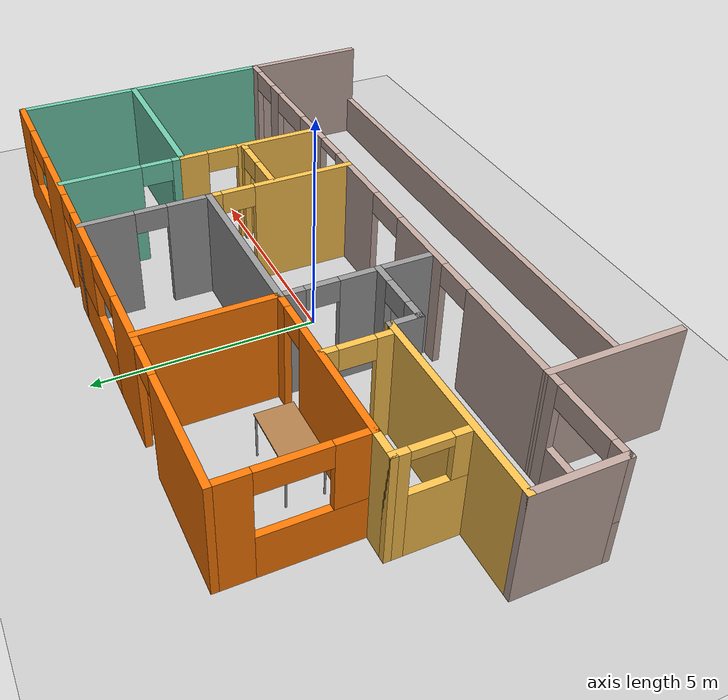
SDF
<sdf version="1.7">
 <world name="__default__">
  <model name="Building">
   <link name="Wall_0">
    <pose>1.05011 4.39635 0 0 -0 0</pose>
    <visual name="Wall_0_Visual_0">
     <pose>-5.36603 0 1.25 0 -0 0</pose>
     <geometry><box><size>2.76795 0.15 2.5</size></box></geometry>
     <material>
      <script><uri>file://media/materials/scripts/gazebo.material</uri><name>Gazebo/Grey</name></script>
      <ambient>0.996078 0.47451 0.0196078 1</ambient>
     </material>
     <meta><layer>0</layer></meta>
    </visual>
    <collision name="Wall_0_Collision_0">
     <geometry><box><size>2.76795 0.15 2.5</size></box></geometry>
     <pose>-5.36603 0 1.25 0 -0 0</pose>
    </collision>
    <visual name="Wall_0_Visual_1">
     <pose>-2.37459 0 1.25 0 -0 0</pose>
     <geometry><box><size>1.56929 0.15 2.5</size></box></geometry>
     <material>
      <script><uri>file://media/materials/scripts/gazebo.material</uri><name>Gazebo/Grey</name></script>
      <ambient>0.996078 0.47451 0.0196078 1</ambient>
     </material>
     <meta><layer>0</layer></meta>
    </visual>
    <collision name="Wall_0_Collision_1">
     <geometry><box><size>1.56929 0.15 2.5</size></box></geometry>
     <pose>-2.37459 0 1.25 0 -0 0</pose>
    </collision>
    <visual name="Wall_0_Visual_2">
     <pose>3.2233 0 1.25 0 -0 0</pose>
     <geometry><box><size>1.75312 0.15 2.5</size></box></geometry>
     <material>
      <script><uri>file://media/materials/scripts/gazebo.material</uri><name>Gazebo/Grey</name></script>
      <ambient>0.996078 0.47451 0.0196078 1</ambient>
     </material>
     <meta><layer>0</layer></meta>
    </visual>
    <collision name="Wall_0_Collision_2">
     <geometry><box><size>1.75312 0.15 2.5</size></box></geometry>
     <pose>3.2233 0 1.25 0 -0 0</pose>
    </collision>
    <visual name="Wall_0_Visual_3">
     <pose>-0.015857 0 0.5 0 -0 0</pose>
     <geometry><box><size>3.14818 0.15 1</size></box></geometry>
     <material>
      <script><uri>file://media/materials/scripts/gazebo.material</uri><name>Gazebo/Grey</name></script>
      <ambient>0.996078 0.47451 0.0196078 1</ambient>
     </material>
     <meta><layer>0</layer></meta>
    </visual>
    <collision name="Wall_0_Collision_3">
     <geometry><box><size>3.14818 0.15 1</size></box></geometry>
     <pose>-0.015857 0 0.5 0 -0 0</pose>
    </collision>
    <visual name="Wall_0_Visual_4">
     <pose>5.42493 0 0.5 0 -0 0</pose>
     <geometry><box><size>2.65014 0.15 1</size></box></geometry>
     <material>
      <script><uri>file://media/materials/scripts/gazebo.material</uri><name>Gazebo/Grey</name></script>
      <ambient>0.996078 0.47451 0.0196078 1</ambient>
     </material>
     <meta><layer>0</layer></meta>
    </visual>
    <collision name="Wall_0_Collision_4">
     <geometry><box><size>2.65014 0.15 1</size></box></geometry>
     <pose>5.42493 0 0.5 0 -0 0</pose>
    </collision>
    <visual name="Wall_0_Visual_5">
     <pose>0.684143 0 1.75 0 -0 0</pose>
     <geometry><box><size>1.74818 0.15 1.5</size></box></geometry>
     <material>
      <script><uri>file://media/materials/scripts/gazebo.material</uri><name>Gazebo/Grey</name></script>
      <ambient>0.996078 0.47451 0.0196078 1</ambient>
     </material>
     <meta><layer>0</layer></meta>
    </visual>
    <collision name="Wall_0_Collision_5">
     <geometry><box><size>1.74818 0.15 1.5</size></box></geometry>
     <pose>0.684143 0 1.75 0 -0 0</pose>
    </collision>
    <visual name="Wall_0_Visual_6">
     <pose>0.684143 0 1.75 0 -0 0</pose>
     <geometry><box><size>1.74818 0.15 1.5</size></box></geometry>
     <material>
      <script><uri>file://media/materials/scripts/gazebo.material</uri><name>Gazebo/Grey</name></script>
      <ambient>0.996078 0.47451 0.0196078 1</ambient>
     </material>
     <meta><layer>0</layer></meta>
    </visual>
    <collision name="Wall_0_Collision_6">
     <geometry><box><size>1.74818 0.15 1.5</size></box></geometry>
     <pose>0.684143 0 1.75 0 -0 0</pose>
    </collision>
    <visual name="Wall_0_Visual_7">
     <pose>6.12493 0 1.75 0 -0 0</pose>
     <geometry><box><size>1.25014 0.15 1.5</size></box></geometry>
     <material>
      <script><uri>file://media/materials/scripts/gazebo.material</uri><name>Gazebo/Grey</name></script>
      <ambient>0.996078 0.47451 0.0196078 1</ambient>
     </material>
     <meta><layer>0</layer></meta>
    </visual>
    <collision name="Wall_0_Collision_7">
     <geometry><box><size>1.25014 0.15 1.5</size></box></geometry>
     <pose>6.12493 0 1.75 0 -0 0</pose>
    </collision>
    <visual name="Wall_0_Visual_8">
     <pose>-3.57065 0 2.25 0 -0 0</pose>
     <geometry><box><size>0.822813 0.15 0.5</size></box></geometry>
     <material>
      <script><uri>file://media/materials/scripts/gazebo.material</uri><name>Gazebo/Grey</name></script>
      <ambient>0.996078 0.47451 0.0196078 1</ambient>
     </material>
     <meta><layer>0</layer></meta>
    </visual>
    <collision name="Wall_0_Collision_8">
     <geometry><box><size>0.822813 0.15 0.5</size></box></geometry>
     <pose>-3.57065 0 2.25 0 -0 0</pose>
    </collision>
    <visual name="Wall_0_Visual_9">
     <pose>-0.889948 0 2.25 0 -0 0</pose>
     <geometry><box><size>1.4 0.15 0.5</size></box></geometry>
     <material>
      <script><uri>file://media/materials/scripts/gazebo.material</uri><name>Gazebo/Grey</name></script>
      <ambient>0.996078 0.47451 0.0196078 1</ambient>
     </material>
     <meta><layer>0</layer></meta>
    </visual>
    <collision name="Wall_0_Collision_9">
     <geometry><box><size>1.4 0.15 0.5</size></box></geometry>
     <pose>-0.889948 0 2.25 0 -0 0</pose>
    </collision>
    <visual name="Wall_0_Visual_10">
     <pose>4.79986 0 2.25 0 -0 0</pose>
     <geometry><box><size>1.4 0.15 0.5</size></box></geometry>
     <material>
      <script><uri>file://media/materials/scripts/gazebo.material</uri><name>Gazebo/Grey</name></script>
      <ambient>0.996078 0.47451 0.0196078 1</ambient>
     </material>
     <meta><layer>0</layer></meta>
    </visual>
    <collision name="Wall_0_Collision_10">
     <geometry><box><size>1.4 0.15 0.5</size></box></geometry>
     <pose>4.79986 0 2.25 0 -0 0</pose>
    </collision>
    <visual name="Wall_0_Visual_11">
     <pose>1.95249 0 2.25 0 -0 0</pose>
     <geometry><box><size>0.788508 0.15 0.5</size></box></geometry>
     <material>
      <script><uri>file://media/materials/scripts/gazebo.material</uri><name>Gazebo/Grey</name></script>
      <ambient>0.996078 0.47451 0.0196078 1</ambient>
     </material>
     <meta><layer>0</layer></meta>
    </visual>
    <collision name="Wall_0_Collision_11">
     <geometry><box><size>0.788508 0.15 0.5</size></box></geometry>
     <pose>1.95249 0 2.25 0 -0 0</pose>
    </collision>
    <visual name="Wall_0_Visual_12">
     <pose>1.95249 0 2.25 0 -0 0</pose>
     <geometry><box><size>0.788508 0.15 0.5</size></box></geometry>
     <material>
      <script><uri>file://media/materials/scripts/gazebo.material</uri><name>Gazebo/Grey</name></script>
      <ambient>0.996078 0.47451 0.0196078 1</ambient>
     </material>
     <meta><layer>0</layer></meta>
    </visual>
    <collision name="Wall_0_Collision_12">
     <geometry><box><size>0.788508 0.15 0.5</size></box></geometry>
     <pose>1.95249 0 2.25 0 -0 0</pose>
    </collision>
   </link>
   <link name="Wall_10">
    <collision name="Wall_10_Collision">
     <geometry><box><size>4 0.15 2.5</size></box></geometry>
     <pose>0 0 1.25 0 -0 0</pose>
    </collision>
    <visual name="Wall_10_Visual">
     <pose>0 0 1.25 0 -0 0</pose>
     <geometry><box><size>4 0.15 2.5</size></box></geometry>
     <material>
      <script><uri>file://media/materials/scripts/gazebo.material</uri><name>Gazebo/Grey</name></script>
      <ambient>1 1 1 1</ambient>
     </material>
     <meta><layer>0</layer></meta>
    </visual>
    <pose>0.150112 1.54635 0 0 -0 0</pose>
   </link>
   <link name="Wall_107">
    <pose>2.07511 -0.128649 0 0 -0 -1.5708</pose>
    <visual name="Wall_107_Visual_0">
     <pose>-1.57211 0 1.25 0 -0 0</pose>
     <geometry><box><size>0.355782 0.15 2.5</size></box></geometry>
     <material>
      <script><uri>file://media/materials/scripts/gazebo.material</uri><name>Gazebo/Grey</name></script>
      <ambient>1 0.764706 0.305882 1</ambient>
     </material>
     <meta><layer>0</layer></meta>
    </visual>
    <collision name="Wall_107_Collision_0">
     <geometry><box><size>0.355782 0.15 2.5</size></box></geometry>
     <pose>-1.57211 0 1.25 0 -0 0</pose>
    </collision>
    <visual name="Wall_107_Visual_1">
     <pose>0.556557 0 1.25 0 -0 0</pose>
     <geometry><box><size>2.38689 0.15 2.5</size></box></geometry>
     <material>
      <script><uri>file://media/materials/scripts/gazebo.material</uri><name>Gazebo/Grey</name></script>
      <ambient>1 0.764706 0.305882 1</ambient>
     </material>
     <meta><layer>0</layer></meta>
    </visual>
    <collision name="Wall_107_Collision_1">
     <geometry><box><size>2.38689 0.15 2.5</size></box></geometry>
     <pose>0.556557 0 1.25 0 -0 0</pose>
    </collision>
    <visual name="Wall_107_Visual_2">
     <pose>-1.01555 0 2.25 0 -0 0</pose>
     <geometry><box><size>0.757332 0.15 0.5</size></box></geometry>
     <material>
      <script><uri>file://media/materials/scripts/gazebo.material</uri><name>Gazebo/Grey</name></script>
      <ambient>1 0.764706 0.305882 1</ambient>
     </material>
     <meta><layer>0</layer></meta>
    </visual>
    <collision name="Wall_107_Collision_2">
     <geometry><box><size>0.757332 0.15 0.5</size></box></geometry>
     <pose>-1.01555 0 2.25 0 -0 0</pose>
    </collision>
   </link>
   <link name="Wall_11">
    <pose>2.07511 2.97135 0 0 -0 1.5708</pose>
    <visual name="Wall_11_Visual_0">
     <pose>-0.979075 0 1.25 0 -0 0</pose>
     <geometry><box><size>1.04185 0.15 2.5</size></box></geometry>
     <material>
      <script><uri>file://media/materials/scripts/gazebo.material</uri><name>Gazebo/Grey</name></script>
      <ambient>1 1 1 1</ambient>
     </material>
     <meta><layer>0</layer></meta>
    </visual>
    <collision name="Wall_11_Collision_0">
     <geometry><box><size>1.04185 0.15 2.5</size></box></geometry>
     <pose>-0.979075 0 1.25 0 -0 0</pose>
    </collision>
    <visual name="Wall_11_Visual_1">
     <pose>0.87636 0 1.25 0 -0 0</pose>
     <geometry><box><size>1.24728 0.15 2.5</size></box></geometry>
     <material>
      <script><uri>file://media/materials/scripts/gazebo.material</uri><name>Gazebo/Grey</name></script>
      <ambient>1 1 1 1</ambient>
     </material>
     <meta><layer>0</layer></meta>
    </visual>
    <collision name="Wall_11_Collision_1">
     <geometry><box><size>1.24728 0.15 2.5</size></box></geometry>
     <pose>0.87636 0 1.25 0 -0 0</pose>
    </collision>
    <visual name="Wall_11_Visual_2">
     <pose>-0.102714 0 2.25 0 -0 0</pose>
     <geometry><box><size>0.71087 0.15 0.5</size></box></geometry>
     <material>
      <script><uri>file://media/materials/scripts/gazebo.material</uri><name>Gazebo/Grey</name></script>
      <ambient>1 1 1 1</ambient>
     </material>
     <meta><layer>0</layer></meta>
    </visual>
    <collision name="Wall_11_Collision_2">
     <geometry><box><size>0.71087 0.15 0.5</size></box></geometry>
     <pose>-0.102714 0 2.25 0 -0 0</pose>
    </collision>
   </link>
   <link name="Wall_115">
    <pose>2.98021 0.049674 0 0 -0 3.14159</pose>
    <visual name="Wall_115_Visual_0">
     <pose>-0.770795 0 1.25 0 -0 0</pose>
     <geometry><box><size>0.20841 0.15 2.5</size></box></geometry>
     <material>
      <script><uri>file://media/materials/scripts/gazebo.material</uri><name>Gazebo/Grey</name></script>
      <ambient>1 0.764706 0.305882 1</ambient>
     </material>
     <meta><layer>0</layer></meta>
    </visual>
    <collision name="Wall_115_Collision_0">
     <geometry><box><size>0.20841 0.15 2.5</size></box></geometry>
     <pose>-0.770795 0 1.25 0 -0 0</pose>
    </collision>
    <visual name="Wall_115_Visual_1">
     <pose>0.438613 0 1.25 0 -0 0</pose>
     <geometry><box><size>0.872773 0.15 2.5</size></box></geometry>
     <material>
      <script><uri>file://media/materials/scripts/gazebo.material</uri><name>Gazebo/Grey</name></script>
      <ambient>1 0.764706 0.305882 1</ambient>
     </material>
     <meta><layer>0</layer></meta>
    </visual>
    <collision name="Wall_115_Collision_1">
     <geometry><box><size>0.872773 0.15 2.5</size></box></geometry>
     <pose>0.438613 0 1.25 0 -0 0</pose>
    </collision>
    <visual name="Wall_115_Visual_2">
     <pose>-0.332182 0 2.25 0 -0 0</pose>
     <geometry><box><size>0.668817 0.15 0.5</size></box></geometry>
     <material>
      <script><uri>file://media/materials/scripts/gazebo.material</uri><name>Gazebo/Grey</name></script>
      <ambient>1 0.764706 0.305882 1</ambient>
     </material>
     <meta><layer>0</layer></meta>
    </visual>
    <collision name="Wall_115_Collision_2">
     <geometry><box><size>0.668817 0.15 0.5</size></box></geometry>
     <pose>-0.332182 0 2.25 0 -0 0</pose>
    </collision>
   </link>
   <link name="Wall_118">
    <collision name="Wall_118_Collision">
     <geometry><box><size>3 0.15 2.5</size></box></geometry>
     <pose>0 0 1.25 0 -0 0</pose>
    </collision>
    <visual name="Wall_118_Visual">
     <pose>0 0 1.25 0 -0 0</pose>
     <geometry><box><size>3 0.15 2.5</size></box></geometry>
     <material>
      <script><uri>file://media/materials/scripts/gazebo.material</uri><name>Gazebo/Grey</name></script>
      <ambient>0.760784 0.662745 0.627451 1</ambient>
     </material>
     <meta><layer>0</layer></meta>
    </visual>
    <pose>7.72489 -3.2285 0 0 -0 -1.57064</pose>
   </link>
   <link name="Wall_120">
    <collision name="Wall_120_Collision">
     <geometry><box><size>3 0.15 2.5</size></box></geometry>
     <pose>0 0 1.25 0 -0 0</pose>
    </collision>
    <visual name="Wall_120_Visual">
     <pose>0 0 1.25 0 -0 0</pose>
     <geometry><box><size>3 0.15 2.5</size></box></geometry>
     <material>
      <script><uri>file://media/materials/scripts/gazebo.material</uri><name>Gazebo/Grey</name></script>
      <ambient>0.760784 0.662745 0.627451 1</ambient>
     </material>
     <meta><layer>0</layer></meta>
    </visual>
    <pose>-5.62534 -3.22835 0 0 -0 -1.5708</pose>
   </link>
   <link name="Wall_122">
    <collision name="Wall_122_Collision">
     <geometry><box><size>13.5 0.15 1</size></box></geometry>
     <pose>0 0 0.5 0 -0 0</pose>
    </collision>
    <visual name="Wall_122_Visual">
     <pose>0 0 0.5 0 -0 0</pose>
     <geometry><box><size>13.5 0.15 1</size></box></geometry>
     <material>
      <script><uri>file://media/materials/scripts/gazebo.material</uri><name>Gazebo/Grey</name></script>
      <ambient>0.760784 0.662745 0.627451 1</ambient>
     </material>
     <meta><layer>0</layer></meta>
    </visual>
    <pose>1.04989 -4.6535 0 0 -0 -2.3e-05</pose>
   </link>
   <link name="Wall_136">
    <collision name="Wall_136_Collision">
     <geometry><box><size>0.75 0.15 2.5</size></box></geometry>
     <pose>0 0 1.25 0 -0 0</pose>
    </collision>
    <visual name="Wall_136_Visual">
     <pose>0 0 1.25 0 -0 0</pose>
     <geometry><box><size>0.75 0.15 2.5</size></box></geometry>
     <material>
      <script><uri>file://media/materials/scripts/gazebo.material</uri><name>Gazebo/Grey</name></script>
      <ambient>1 0.764706 0.305882 1</ambient>
     </material>
     <meta><layer>0</layer></meta>
    </visual>
    <pose>-5.92489 1.54635 0 0 -0 3.14159</pose>
   </link>
   <link name="Wall_137">
    <pose>-6.22489 0.871351 0 0 -0 -1.5708</pose>
    <visual name="Wall_137_Visual_0">
     <pose>-0.5638 0 1.25 0 -0 0</pose>
     <geometry><box><size>0.3724 0.15 2.5</size></box></geometry>
     <material>
      <script><uri>file://media/materials/scripts/gazebo.material</uri><name>Gazebo/Grey</name></script>
      <ambient>1 0.764706 0.305882 1</ambient>
     </material>
     <meta><layer>0</layer></meta>
    </visual>
    <collision name="Wall_137_Collision_0">
     <geometry><box><size>0.3724 0.15 2.5</size></box></geometry>
     <pose>-0.5638 0 1.25 0 -0 0</pose>
    </collision>
    <visual name="Wall_137_Visual_1">
     <pose>0.1862 0 0.75 0 -0 0</pose>
     <geometry><box><size>1.1276 0.15 1.5</size></box></geometry>
     <material>
      <script><uri>file://media/materials/scripts/gazebo.material</uri><name>Gazebo/Grey</name></script>
      <ambient>1 0.764706 0.305882 1</ambient>
     </material>
     <meta><layer>0</layer></meta>
    </visual>
    <collision name="Wall_137_Collision_1">
     <geometry><box><size>1.1276 0.15 1.5</size></box></geometry>
     <pose>0.1862 0 0.75 0 -0 0</pose>
    </collision>
    <visual name="Wall_137_Visual_2">
     <pose>0.5862 0 2 0 -0 0</pose>
     <geometry><box><size>0.3276 0.15 1</size></box></geometry>
     <material>
      <script><uri>file://media/materials/scripts/gazebo.material</uri><name>Gazebo/Grey</name></script>
      <ambient>1 0.764706 0.305882 1</ambient>
     </material>
     <meta><layer>0</layer></meta>
    </visual>
    <collision name="Wall_137_Collision_2">
     <geometry><box><size>0.3276 0.15 1</size></box></geometry>
     <pose>0.5862 0 2 0 -0 0</pose>
    </collision>
    <visual name="Wall_137_Visual_3">
     <pose>0.0224 0 2.4 0 -0 0</pose>
     <geometry><box><size>0.8 0.15 0.2</size></box></geometry>
     <material>
      <script><uri>file://media/materials/scripts/gazebo.material</uri><name>Gazebo/Grey</name></script>
      <ambient>1 0.764706 0.305882 1</ambient>
     </material>
     <meta><layer>0</layer></meta>
    </visual>
    <collision name="Wall_137_Collision_3">
     <geometry><box><size>0.8 0.15 0.2</size></box></geometry>
     <pose>0.0224 0 2.4 0 -0 0</pose>
    </collision>
   </link>
   <link name="Wall_139">
    <pose>-3.58813 0.821217 0 0 -0 -1.5708</pose>
    <visual name="Wall_139_Visual_0">
     <pose>-0.574639 0 1.25 0 -0 0</pose>
     <geometry><box><size>0.350722 0.15 2.5</size></box></geometry>
     <material>
      <script><uri>file://media/materials/scripts/gazebo.material</uri><name>Gazebo/Grey</name></script>
      <ambient>1 0.764706 0.305882 1</ambient>
     </material>
     <meta><layer>0</layer></meta>
    </visual>
    <collision name="Wall_139_Collision_0">
     <geometry><box><size>0.350722 0.15 2.5</size></box></geometry>
     <pose>-0.574639 0 1.25 0 -0 0</pose>
    </collision>
    <visual name="Wall_139_Visual_1">
     <pose>0.556712 0 1.25 0 -0 0</pose>
     <geometry><box><size>0.386577 0.15 2.5</size></box></geometry>
     <material>
      <script><uri>file://media/materials/scripts/gazebo.material</uri><name>Gazebo/Grey</name></script>
      <ambient>1 0.764706 0.305882 1</ambient>
     </material>
     <meta><layer>0</layer></meta>
    </visual>
    <collision name="Wall_139_Collision_1">
     <geometry><box><size>0.386577 0.15 2.5</size></box></geometry>
     <pose>0.556712 0 1.25 0 -0 0</pose>
    </collision>
    <visual name="Wall_139_Visual_2">
     <pose>-0.017927 0 2.25 0 -0 0</pose>
     <geometry><box><size>0.762701 0.15 0.5</size></box></geometry>
     <material>
      <script><uri>file://media/materials/scripts/gazebo.material</uri><name>Gazebo/Grey</name></script>
      <ambient>1 0.764706 0.305882 1</ambient>
     </material>
     <meta><layer>0</layer></meta>
    </visual>
    <collision name="Wall_139_Collision_2">
     <geometry><box><size>0.762701 0.15 0.5</size></box></geometry>
     <pose>-0.017927 0 2.25 0 -0 0</pose>
    </collision>
   </link>
   <link name="Wall_143">
    <pose>-2.57489 -0.553649 0 0 -0 0</pose>
    <visual name="Wall_143_Visual_0">
     <pose>-0.619924 0 1.25 0 -0 0</pose>
     <geometry><box><size>0.510151 0.15 2.5</size></box></geometry>
     <material>
      <script><uri>file://media/materials/scripts/gazebo.material</uri><name>Gazebo/Grey</name></script>
      <ambient>1 1 1 1</ambient>
     </material>
     <meta><layer>0</layer></meta>
    </visual>
    <collision name="Wall_143_Collision_0">
     <geometry><box><size>0.510151 0.15 2.5</size></box></geometry>
     <pose>-0.619924 0 1.25 0 -0 0</pose>
    </collision>
    <visual name="Wall_143_Visual_1">
     <pose>0.616812 0 1.25 0 -0 0</pose>
     <geometry><box><size>0.516376 0.15 2.5</size></box></geometry>
     <material>
      <script><uri>file://media/materials/scripts/gazebo.material</uri><name>Gazebo/Grey</name></script>
      <ambient>1 1 1 1</ambient>
     </material>
     <meta><layer>0</layer></meta>
    </visual>
    <collision name="Wall_143_Collision_1">
     <geometry><box><size>0.516376 0.15 2.5</size></box></geometry>
     <pose>0.616812 0 1.25 0 -0 0</pose>
    </collision>
    <visual name="Wall_143_Visual_2">
     <pose>-0.003112 0 2.25 0 -0 0</pose>
     <geometry><box><size>0.723473 0.15 0.5</size></box></geometry>
     <material>
      <script><uri>file://media/materials/scripts/gazebo.material</uri><name>Gazebo/Grey</name></script>
      <ambient>1 1 1 1</ambient>
     </material>
     <meta><layer>0</layer></meta>
    </visual>
    <collision name="Wall_143_Collision_2">
     <geometry><box><size>0.723473 0.15 0.5</size></box></geometry>
     <pose>-0.003112 0 2.25 0 -0 0</pose>
    </collision>
   </link>
   <link name="Wall_145">
    <pose>-6.67511 -1.8035 0 0 -0 -3.14145</pose>
    <visual name="Wall_145_Visual_0">
     <pose>-0.916173 0 1.25 0 -0 0</pose>
     <geometry><box><size>0.417655 0.15 2.5</size></box></geometry>
     <material>
      <script><uri>file://media/materials/scripts/gazebo.material</uri><name>Gazebo/Grey</name></script>
      <ambient>0.760784 0.662745 0.627451 1</ambient>
     </material>
     <meta><layer>0</layer></meta>
    </visual>
    <collision name="Wall_145_Collision_0">
     <geometry><box><size>0.417655 0.15 2.5</size></box></geometry>
     <pose>-0.916173 0 1.25 0 -0 0</pose>
    </collision>
    <visual name="Wall_145_Visual_1">
     <pose>0.208827 0 0.5 0 -0 0</pose>
     <geometry><box><size>1.83234 0.15 1</size></box></geometry>
     <material>
      <script><uri>file://media/materials/scripts/gazebo.material</uri><name>Gazebo/Grey</name></script>
      <ambient>0.760784 0.662745 0.627451 1</ambient>
     </material>
     <meta><layer>0</layer></meta>
    </visual>
    <collision name="Wall_145_Collision_1">
     <geometry><box><size>1.83234 0.15 1</size></box></geometry>
     <pose>0.208827 0 0.5 0 -0 0</pose>
    </collision>
    <visual name="Wall_145_Visual_2">
     <pose>0.908827 0 1.75 0 -0 0</pose>
     <geometry><box><size>0.432345 0.15 1.5</size></box></geometry>
     <material>
      <script><uri>file://media/materials/scripts/gazebo.material</uri><name>Gazebo/Grey</name></script>
      <ambient>0.760784 0.662745 0.627451 1</ambient>
     </material>
     <meta><layer>0</layer></meta>
    </visual>
    <collision name="Wall_145_Collision_2">
     <geometry><box><size>0.432345 0.15 1.5</size></box></geometry>
     <pose>0.908827 0 1.75 0 -0 0</pose>
    </collision>
    <visual name="Wall_145_Visual_3">
     <pose>-0.007345 0 2.25 0 -0 0</pose>
     <geometry><box><size>1.4 0.15 0.5</size></box></geometry>
     <material>
      <script><uri>file://media/materials/scripts/gazebo.material</uri><name>Gazebo/Grey</name></script>
      <ambient>0.760784 0.662745 0.627451 1</ambient>
     </material>
     <meta><layer>0</layer></meta>
    </visual>
    <collision name="Wall_145_Collision_3">
     <geometry><box><size>1.4 0.15 0.5</size></box></geometry>
     <pose>-0.007345 0 2.25 0 -0 0</pose>
    </collision>
   </link>
   <link name="Wall_146">
    <collision name="Wall_146_Collision">
     <geometry><box><size>2 0.15 2.5</size></box></geometry>
     <pose>0 0 1.25 0 -0 0</pose>
    </collision>
    <visual name="Wall_146_Visual">
     <pose>0 0 1.25 0 -0 0</pose>
     <geometry><box><size>2 0.15 2.5</size></box></geometry>
     <material>
      <script><uri>file://media/materials/scripts/gazebo.material</uri><name>Gazebo/Grey</name></script>
      <ambient>0.760784 0.662745 0.627451 1</ambient>
     </material>
     <meta><layer>0</layer></meta>
    </visual>
    <pose>-7.72489 -0.878649 0 0 -0 1.5708</pose>
   </link>
   <link name="Wall_147">
    <collision name="Wall_147_Collision">
     <geometry><box><size>4.5 0.15 2.5</size></box></geometry>
     <pose>0 0 1.25 0 -0 0</pose>
    </collision>
    <visual name="Wall_147_Visual">
     <pose>0 0 1.25 0 -0 0</pose>
     <geometry><box><size>4.5 0.15 2.5</size></box></geometry>
     <material>
      <script><uri>file://media/materials/scripts/gazebo.material</uri><name>Gazebo/Grey</name></script>
      <ambient>1 0.764706 0.305882 1</ambient>
     </material>
     <meta><layer>0</layer></meta>
    </visual>
    <pose>-5.54989 0.046351 0 0 -0 0</pose>
   </link>
   <link name="Wall_148">
    <collision name="Wall_148_Collision">
     <geometry><box><size>0.75 0.15 2.5</size></box></geometry>
     <pose>0 0 1.25 0 -0 0</pose>
    </collision>
    <visual name="Wall_148_Visual">
     <pose>0 0 1.25 0 -0 0</pose>
     <geometry><box><size>0.75 0.15 2.5</size></box></geometry>
     <material>
      <script><uri>file://media/materials/scripts/gazebo.material</uri><name>Gazebo/Grey</name></script>
      <ambient>1 1 1 1</ambient>
     </material>
     <meta><layer>0</layer></meta>
    </visual>
    <pose>-3.37489 -0.253649 0 0 -0 -1.5708</pose>
   </link>
   <link name="Wall_2">
    <collision name="Wall_2_Collision">
     <geometry><box><size>3 0.15 2.5</size></box></geometry>
     <pose>0 0 1.25 0 -0 0</pose>
    </collision>
    <visual name="Wall_2_Visual">
     <pose>0 0 1.25 0 -0 0</pose>
     <geometry><box><size>3 0.15 2.5</size></box></geometry>
     <material>
      <script><uri>file://media/materials/scripts/gazebo.material</uri><name>Gazebo/Grey</name></script>
      <ambient>0.435294 0.796078 0.67451 1</ambient>
     </material>
     <meta><layer>0</layer></meta>
    </visual>
    <pose>7.72511 2.97135 0 0 -0 -1.5708</pose>
   </link>
   <link name="Wall_25">
    <collision name="Wall_25_Collision">
     <geometry><box><size>3.5 0.15 2.5</size></box></geometry>
     <pose>0 0 1.25 0 -0 0</pose>
    </collision>
    <visual name="Wall_25_Visual">
     <pose>0 0 1.25 0 -0 0</pose>
     <geometry><box><size>3.5 0.15 2.5</size></box></geometry>
     <material>
      <script><uri>file://media/materials/scripts/gazebo.material</uri><name>Gazebo/Grey</name></script>
      <ambient>0.435294 0.796078 0.67451 1</ambient>
     </material>
     <meta><layer>0</layer></meta>
    </visual>
    <pose>7.72489 -0.128499 0 0 -0 -1.57093</pose>
   </link>
   <link name="Wall_27">
    <pose>3.87511 -0.128649 0 0 -0 1.5708</pose>
    <visual name="Wall_27_Visual_0">
     <pose>-0.703233 0 1.25 0 -0 0</pose>
     <geometry><box><size>2.09354 0.15 2.5</size></box></geometry>
     <material>
      <script><uri>file://media/materials/scripts/gazebo.material</uri><name>Gazebo/Grey</name></script>
      <ambient>1 0.764706 0.305882 1</ambient>
     </material>
     <meta><layer>0</layer></meta>
    </visual>
    <collision name="Wall_27_Collision_0">
     <geometry><box><size>2.09354 0.15 2.5</size></box></geometry>
     <pose>-0.703233 0 1.25 0 -0 0</pose>
    </collision>
    <visual name="Wall_27_Visual_1">
     <pose>1.41102 0 1.25 0 -0 0</pose>
     <geometry><box><size>0.677954 0.15 2.5</size></box></geometry>
     <material>
      <script><uri>file://media/materials/scripts/gazebo.material</uri><name>Gazebo/Grey</name></script>
      <ambient>1 0.764706 0.305882 1</ambient>
     </material>
     <meta><layer>0</layer></meta>
    </visual>
    <collision name="Wall_27_Collision_1">
     <geometry><box><size>0.677954 0.15 2.5</size></box></geometry>
     <pose>1.41102 0 1.25 0 -0 0</pose>
    </collision>
    <visual name="Wall_27_Visual_2">
     <pose>0.70779 0 2.25 0 -0 0</pose>
     <geometry><box><size>0.728512 0.15 0.5</size></box></geometry>
     <material>
      <script><uri>file://media/materials/scripts/gazebo.material</uri><name>Gazebo/Grey</name></script>
      <ambient>1 0.764706 0.305882 1</ambient>
     </material>
     <meta><layer>0</layer></meta>
    </visual>
    <collision name="Wall_27_Collision_2">
     <geometry><box><size>0.728512 0.15 0.5</size></box></geometry>
     <pose>0.70779 0 2.25 0 -0 0</pose>
    </collision>
   </link>
   <link name="Wall_3">
    <collision name="Wall_3_Collision">
     <geometry><box><size>4 0.15 2.5</size></box></geometry>
     <pose>0 0 1.25 0 -0 0</pose>
    </collision>
    <visual name="Wall_3_Visual">
     <pose>0 0 1.25 0 -0 0</pose>
     <geometry><box><size>4 0.15 2.5</size></box></geometry>
     <material>
      <script><uri>file://media/materials/scripts/gazebo.material</uri><name>Gazebo/Grey</name></script>
      <ambient>0.435294 0.796078 0.67451 1</ambient>
     </material>
     <meta><layer>0</layer></meta>
    </visual>
    <pose>5.80011 1.54635 0 0 -0 3.14159</pose>
   </link>
   <link name="Wall_4">
    <pose>3.87511 2.97135 0 0 -0 1.5708</pose>
    <visual name="Wall_4_Visual_0">
     <pose>-1.33125 0 1.25 0 -0 0</pose>
     <geometry><box><size>0.337503 0.15 2.5</size></box></geometry>
     <material>
      <script><uri>file://media/materials/scripts/gazebo.material</uri><name>Gazebo/Grey</name></script>
      <ambient>0.435294 0.796078 0.67451 1</ambient>
     </material>
     <meta><layer>0</layer></meta>
    </visual>
    <collision name="Wall_4_Collision_0">
     <geometry><box><size>0.337503 0.15 2.5</size></box></geometry>
     <pose>-1.33125 0 1.25 0 -0 0</pose>
    </collision>
    <visual name="Wall_4_Visual_1">
     <pose>0.530708 0 1.25 0 -0 0</pose>
     <geometry><box><size>1.93858 0.15 2.5</size></box></geometry>
     <material>
      <script><uri>file://media/materials/scripts/gazebo.material</uri><name>Gazebo/Grey</name></script>
      <ambient>0.435294 0.796078 0.67451 1</ambient>
     </material>
     <meta><layer>0</layer></meta>
    </visual>
    <collision name="Wall_4_Collision_1">
     <geometry><box><size>1.93858 0.15 2.5</size></box></geometry>
     <pose>0.530708 0 1.25 0 -0 0</pose>
    </collision>
    <visual name="Wall_4_Visual_2">
     <pose>-0.80054 0 2.25 0 -0 0</pose>
     <geometry><box><size>0.723913 0.15 0.5</size></box></geometry>
     <material>
      <script><uri>file://media/materials/scripts/gazebo.material</uri><name>Gazebo/Grey</name></script>
      <ambient>0.435294 0.796078 0.67451 1</ambient>
     </material>
     <meta><layer>0</layer></meta>
    </visual>
    <collision name="Wall_4_Collision_2">
     <geometry><box><size>0.723913 0.15 0.5</size></box></geometry>
     <pose>-0.80054 0 2.25 0 -0 0</pose>
    </collision>
   </link>
   <link name="Wall_45">
    <pose>1.04966 -1.80335 0 0 -0 0</pose>
    <visual name="Wall_45_Visual_0">
     <pose>-5.43857 0 1.25 0 -0 0</pose>
     <geometry><box><size>2.62285 0.15 2.5</size></box></geometry>
     <material>
      <script><uri>file://media/materials/scripts/gazebo.material</uri><name>Gazebo/Grey</name></script>
      <ambient>0.760784 0.662745 0.627451 1</ambient>
     </material>
     <meta><layer>0</layer></meta>
    </visual>
    <collision name="Wall_45_Collision_0">
     <geometry><box><size>2.62285 0.15 2.5</size></box></geometry>
     <pose>-5.43857 0 1.25 0 -0 0</pose>
    </collision>
    <visual name="Wall_45_Visual_1">
     <pose>-2.32325 0 1.25 0 -0 0</pose>
     <geometry><box><size>1.80779 0.15 2.5</size></box></geometry>
     <material>
      <script><uri>file://media/materials/scripts/gazebo.material</uri><name>Gazebo/Grey</name></script>
      <ambient>0.760784 0.662745 0.627451 1</ambient>
     </material>
     <meta><layer>0</layer></meta>
    </visual>
    <collision name="Wall_45_Collision_1">
     <geometry><box><size>1.80779 0.15 2.5</size></box></geometry>
     <pose>-2.32325 0 1.25 0 -0 0</pose>
    </collision>
    <visual name="Wall_45_Visual_2">
     <pose>0.602257 0 1.25 0 -0 0</pose>
     <geometry><box><size>1.88007 0.15 2.5</size></box></geometry>
     <material>
      <script><uri>file://media/materials/scripts/gazebo.material</uri><name>Gazebo/Grey</name></script>
      <ambient>0.760784 0.662745 0.627451 1</ambient>
     </material>
     <meta><layer>0</layer></meta>
    </visual>
    <collision name="Wall_45_Collision_2">
     <geometry><box><size>1.88007 0.15 2.5</size></box></geometry>
     <pose>0.602257 0 1.25 0 -0 0</pose>
    </collision>
    <visual name="Wall_45_Visual_3">
     <pose>6.52765 0 1.25 0 -0 0</pose>
     <geometry><box><size>0.444692 0.15 2.5</size></box></geometry>
     <material>
      <script><uri>file://media/materials/scripts/gazebo.material</uri><name>Gazebo/Grey</name></script>
      <ambient>0.760784 0.662745 0.627451 1</ambient>
     </material>
     <meta><layer>0</layer></meta>
    </visual>
    <collision name="Wall_45_Collision_3">
     <geometry><box><size>0.444692 0.15 2.5</size></box></geometry>
     <pose>6.52765 0 1.25 0 -0 0</pose>
    </collision>
    <visual name="Wall_45_Visual_4">
     <pose>2.53482 0 0.75 0 -0 0</pose>
     <geometry><box><size>1.98504 0.15 1.5</size></box></geometry>
     <material>
      <script><uri>file://media/materials/scripts/gazebo.material</uri><name>Gazebo/Grey</name></script>
      <ambient>0.760784 0.662745 0.627451 1</ambient>
     </material>
     <meta><layer>0</layer></meta>
    </visual>
    <collision name="Wall_45_Collision_4">
     <geometry><box><size>1.98504 0.15 1.5</size></box></geometry>
     <pose>2.53482 0 0.75 0 -0 0</pose>
    </collision>
    <visual name="Wall_45_Visual_5">
     <pose>4.46632 0 0.5 0 -0 0</pose>
     <geometry><box><size>1.87797 0.15 1</size></box></geometry>
     <material>
      <script><uri>file://media/materials/scripts/gazebo.material</uri><name>Gazebo/Grey</name></script>
      <ambient>0.760784 0.662745 0.627451 1</ambient>
     </material>
     <meta><layer>0</layer></meta>
    </visual>
    <collision name="Wall_45_Collision_5">
     <geometry><box><size>1.87797 0.15 1</size></box></geometry>
     <pose>4.46632 0 0.5 0 -0 0</pose>
    </collision>
    <visual name="Wall_45_Visual_6">
     <pose>5.16632 0 1.75 0 -0 0</pose>
     <geometry><box><size>0.477971 0.15 1.5</size></box></geometry>
     <material>
      <script><uri>file://media/materials/scripts/gazebo.material</uri><name>Gazebo/Grey</name></script>
      <ambient>0.760784 0.662745 0.627451 1</ambient>
     </material>
     <meta><layer>0</layer></meta>
    </visual>
    <collision name="Wall_45_Collision_6">
     <geometry><box><size>0.477971 0.15 1.5</size></box></geometry>
     <pose>5.16632 0 1.75 0 -0 0</pose>
    </collision>
    <visual name="Wall_45_Visual_7">
     <pose>2.93482 0 2 0 -0 0</pose>
     <geometry><box><size>1.18504 0.15 1</size></box></geometry>
     <material>
      <script><uri>file://media/materials/scripts/gazebo.material</uri><name>Gazebo/Grey</name></script>
      <ambient>0.760784 0.662745 0.627451 1</ambient>
     </material>
     <meta><layer>0</layer></meta>
    </visual>
    <collision name="Wall_45_Collision_7">
     <geometry><box><size>1.18504 0.15 1</size></box></geometry>
     <pose>2.93482 0 2 0 -0 0</pose>
    </collision>
    <visual name="Wall_45_Visual_8">
     <pose>-3.67715 0 2.25 0 -0 0</pose>
     <geometry><box><size>0.9 0.15 0.5</size></box></geometry>
     <material>
      <script><uri>file://media/materials/scripts/gazebo.material</uri><name>Gazebo/Grey</name></script>
      <ambient>0.760784 0.662745 0.627451 1</ambient>
     </material>
     <meta><layer>0</layer></meta>
    </visual>
    <collision name="Wall_45_Collision_8">
     <geometry><box><size>0.9 0.15 0.5</size></box></geometry>
     <pose>-3.67715 0 2.25 0 -0 0</pose>
    </collision>
    <visual name="Wall_45_Visual_9">
     <pose>-0.878569 0 2.25 0 -0 0</pose>
     <geometry><box><size>1.08158 0.15 0.5</size></box></geometry>
     <material>
      <script><uri>file://media/materials/scripts/gazebo.material</uri><name>Gazebo/Grey</name></script>
      <ambient>0.760784 0.662745 0.627451 1</ambient>
     </material>
     <meta><layer>0</layer></meta>
    </visual>
    <collision name="Wall_45_Collision_9">
     <geometry><box><size>1.08158 0.15 0.5</size></box></geometry>
     <pose>-0.878569 0 2.25 0 -0 0</pose>
    </collision>
    <visual name="Wall_45_Visual_10">
     <pose>5.85531 0 2.25 0 -0 0</pose>
     <geometry><box><size>0.9 0.15 0.5</size></box></geometry>
     <material>
      <script><uri>file://media/materials/scripts/gazebo.material</uri><name>Gazebo/Grey</name></script>
      <ambient>0.760784 0.662745 0.627451 1</ambient>
     </material>
     <meta><layer>0</layer></meta>
    </visual>
    <collision name="Wall_45_Collision_10">
     <geometry><box><size>0.9 0.15 0.5</size></box></geometry>
     <pose>5.85531 0 2.25 0 -0 0</pose>
    </collision>
    <visual name="Wall_45_Visual_11">
     <pose>4.22734 0 2.25 0 -0 0</pose>
     <geometry><box><size>1.4 0.15 0.5</size></box></geometry>
     <material>
      <script><uri>file://media/materials/scripts/gazebo.material</uri><name>Gazebo/Grey</name></script>
      <ambient>0.760784 0.662745 0.627451 1</ambient>
     </material>
     <meta><layer>0</layer></meta>
    </visual>
    <collision name="Wall_45_Collision_11">
     <geometry><box><size>1.4 0.15 0.5</size></box></geometry>
     <pose>4.22734 0 2.25 0 -0 0</pose>
    </collision>
    <visual name="Wall_45_Visual_12">
     <pose>1.94229 0 2.4 0 -0 0</pose>
     <geometry><box><size>0.8 0.15 0.2</size></box></geometry>
     <material>
      <script><uri>file://media/materials/scripts/gazebo.material</uri><name>Gazebo/Grey</name></script>
      <ambient>0.760784 0.662745 0.627451 1</ambient>
     </material>
     <meta><layer>0</layer></meta>
    </visual>
    <collision name="Wall_45_Collision_12">
     <geometry><box><size>0.8 0.15 0.2</size></box></geometry>
     <pose>1.94229 0 2.4 0 -0 0</pose>
    </collision>
   </link>
   <link name="Wall_55">
    <pose>-1.77489 -0.128649 0 0 -0 -1.5708</pose>
    <visual name="Wall_55_Visual_0">
     <pose>-1.45571 0 1.25 0 -0 0</pose>
     <geometry><box><size>0.588584 0.15 2.5</size></box></geometry>
     <material>
      <script><uri>file://media/materials/scripts/gazebo.material</uri><name>Gazebo/Grey</name></script>
      <ambient>1 1 1 1</ambient>
     </material>
     <meta><layer>0</layer></meta>
    </visual>
    <collision name="Wall_55_Collision_0">
     <geometry><box><size>0.588584 0.15 2.5</size></box></geometry>
     <pose>-1.45571 0 1.25 0 -0 0</pose>
    </collision>
    <visual name="Wall_55_Visual_1">
     <pose>0.656249 0 1.25 0 -0 0</pose>
     <geometry><box><size>2.1875 0.15 2.5</size></box></geometry>
     <material>
      <script><uri>file://media/materials/scripts/gazebo.material</uri><name>Gazebo/Grey</name></script>
      <ambient>1 1 1 1</ambient>
     </material>
     <meta><layer>0</layer></meta>
    </visual>
    <collision name="Wall_55_Collision_1">
     <geometry><box><size>2.1875 0.15 2.5</size></box></geometry>
     <pose>0.656249 0 1.25 0 -0 0</pose>
    </collision>
    <visual name="Wall_55_Visual_2">
     <pose>-0.799459 0 2.25 0 -0 0</pose>
     <geometry><box><size>0.723913 0.15 0.5</size></box></geometry>
     <material>
      <script><uri>file://media/materials/scripts/gazebo.material</uri><name>Gazebo/Grey</name></script>
      <ambient>1 1 1 1</ambient>
     </material>
     <meta><layer>0</layer></meta>
    </visual>
    <collision name="Wall_55_Collision_2">
     <geometry><box><size>0.723913 0.15 0.5</size></box></geometry>
     <pose>-0.799459 0 2.25 0 -0 0</pose>
    </collision>
   </link>
   <link name="Wall_6">
    <pose>-5.62489 2.97135 0 0 -0 -1.5708</pose>
    <visual name="Wall_6_Visual_0">
     <pose>-1.09796 0 1.25 0 -0 0</pose>
     <geometry><box><size>0.804076 0.15 2.5</size></box></geometry>
     <material>
      <script><uri>file://media/materials/scripts/gazebo.material</uri><name>Gazebo/Grey</name></script>
      <ambient>0.996078 0.47451 0.0196078 1</ambient>
     </material>
     <meta><layer>0</layer></meta>
    </visual>
    <collision name="Wall_6_Collision_0">
     <geometry><box><size>0.804076 0.15 2.5</size></box></geometry>
     <pose>-1.09796 0 1.25 0 -0 0</pose>
    </collision>
    <visual name="Wall_6_Visual_1">
     <pose>0.402038 0 0.5 0 -0 0</pose>
     <geometry><box><size>2.19592 0.15 1</size></box></geometry>
     <material>
      <script><uri>file://media/materials/scripts/gazebo.material</uri><name>Gazebo/Grey</name></script>
      <ambient>0.996078 0.47451 0.0196078 1</ambient>
     </material>
     <meta><layer>0</layer></meta>
    </visual>
    <collision name="Wall_6_Collision_1">
     <geometry><box><size>2.19592 0.15 1</size></box></geometry>
     <pose>0.402038 0 0.5 0 -0 0</pose>
    </collision>
    <visual name="Wall_6_Visual_2">
     <pose>1.10204 0 1.75 0 -0 0</pose>
     <geometry><box><size>0.795924 0.15 1.5</size></box></geometry>
     <material>
      <script><uri>file://media/materials/scripts/gazebo.material</uri><name>Gazebo/Grey</name></script>
      <ambient>0.996078 0.47451 0.0196078 1</ambient>
     </material>
     <meta><layer>0</layer></meta>
    </visual>
    <collision name="Wall_6_Collision_2">
     <geometry><box><size>0.795924 0.15 1.5</size></box></geometry>
     <pose>1.10204 0 1.75 0 -0 0</pose>
    </collision>
    <visual name="Wall_6_Visual_3">
     <pose>0.004076 0 2.25 0 -0 0</pose>
     <geometry><box><size>1.4 0.15 0.5</size></box></geometry>
     <material>
      <script><uri>file://media/materials/scripts/gazebo.material</uri><name>Gazebo/Grey</name></script>
      <ambient>0.996078 0.47451 0.0196078 1</ambient>
     </material>
     <meta><layer>0</layer></meta>
    </visual>
    <collision name="Wall_6_Collision_3">
     <geometry><box><size>1.4 0.15 0.5</size></box></geometry>
     <pose>0.004076 0 2.25 0 -0 0</pose>
    </collision>
   </link>
   <link name="Wall_7">
    <pose>-3.69989 1.54635 0 0 -0 0</pose>
    <visual name="Wall_7_Visual_0">
     <pose>-0.569878 0 1.25 0 -0 0</pose>
     <geometry><box><size>2.86024 0.15 2.5</size></box></geometry>
     <material>
      <script><uri>file://media/materials/scripts/gazebo.material</uri><name>Gazebo/Grey</name></script>
      <ambient>0.996078 0.47451 0.0196078 1</ambient>
     </material>
     <meta><layer>0</layer></meta>
    </visual>
    <collision name="Wall_7_Collision_0">
     <geometry><box><size>2.86024 0.15 2.5</size></box></geometry>
     <pose>-0.569878 0 1.25 0 -0 0</pose>
    </collision>
    <visual name="Wall_7_Visual_1">
     <pose>1.77251 0 1.25 0 -0 0</pose>
     <geometry><box><size>0.454972 0.15 2.5</size></box></geometry>
     <material>
      <script><uri>file://media/materials/scripts/gazebo.material</uri><name>Gazebo/Grey</name></script>
      <ambient>0.996078 0.47451 0.0196078 1</ambient>
     </material>
     <meta><layer>0</layer></meta>
    </visual>
    <collision name="Wall_7_Collision_1">
     <geometry><box><size>0.454972 0.15 2.5</size></box></geometry>
     <pose>1.77251 0 1.25 0 -0 0</pose>
    </collision>
    <visual name="Wall_7_Visual_2">
     <pose>1.20264 0 2.25 0 -0 0</pose>
     <geometry><box><size>0.684783 0.15 0.5</size></box></geometry>
     <material>
      <script><uri>file://media/materials/scripts/gazebo.material</uri><name>Gazebo/Grey</name></script>
      <ambient>0.996078 0.47451 0.0196078 1</ambient>
     </material>
     <meta><layer>0</layer></meta>
    </visual>
    <collision name="Wall_7_Collision_2">
     <geometry><box><size>0.684783 0.15 0.5</size></box></geometry>
     <pose>1.20264 0 2.25 0 -0 0</pose>
    </collision>
   </link>
   <link name="Wall_8">
    <collision name="Wall_8_Collision">
     <geometry><box><size>3 0.15 2.5</size></box></geometry>
     <pose>0 0 1.25 0 -0 0</pose>
    </collision>
    <visual name="Wall_8_Visual">
     <pose>0 0 1.25 0 -0 0</pose>
     <geometry><box><size>3 0.15 2.5</size></box></geometry>
     <material>
      <script><uri>file://media/materials/scripts/gazebo.material</uri><name>Gazebo/Grey</name></script>
      <ambient>0.996078 0.47451 0.0196078 1</ambient>
     </material>
     <meta><layer>0</layer></meta>
    </visual>
    <pose>-1.77489 2.97135 0 0 -0 1.5708</pose>
   </link>
   <static>1</static>
  </model>
  <model name="ground_plane">
   <static>1</static>
   <link name="link">
    <collision name="collision">
     <geometry><plane><normal>0 0 1</normal><size>100 100</size></plane></geometry>
     <surface>
      <contact><collide_bitmask>65535</collide_bitmask></contact>
      <friction><ode><mu>100</mu><mu2>50</mu2></ode></friction>
     </surface>
    </collision>
    <visual name="visual">
     <cast_shadows>0</cast_shadows>
     <geometry><plane><normal>0 0 1</normal><size>100 100</size></plane></geometry>
     <material>
      <script><uri>file://media/materials/scripts/gazebo.material</uri><name>Gazebo/Grey</name></script>
     </material>
    </visual>
   </link>
   <pose>-0.312516 -2.64331 0 0 -0 0</pose>
  </model>
  <model name="table_2">
   <static>1</static>
   <link name="link">
    <collision name="surface">
     <pose>0 0 1 0 -0 0</pose>
     <geometry><box><size>1.5 0.8 0.03</size></box></geometry>
     <surface><friction><ode><mu>0.6</mu><mu2>0.6</mu2></ode></friction></surface>
    </collision>
    <visual name="visual1">
     <pose>0 0 1 0 -0 0</pose>
     <geometry><box><size>1.5 0.8 0.03</size></box></geometry>
     <material>
      <script><uri>file://media/materials/scripts/gazebo.material</uri><name>Gazebo/Wood</name></script>
     </material>
    </visual>
    <collision name="front_left_leg">
     <pose>0.68 0.38 0.5 0 -0 0</pose>
     <geometry><cylinder><radius>0.02</radius><length>1</length></cylinder></geometry>
    </collision>
    <visual name="front_left_leg">
     <pose>0.68 0.38 0.5 0 -0 0</pose>
     <geometry><cylinder><radius>0.02</radius><length>1</length></cylinder></geometry>
     <material>
      <script><uri>file://media/materials/scripts/gazebo.material</uri><name>Gazebo/Grey</name></script>
     </material>
    </visual>
    <collision name="front_right_leg">
     <pose>0.68 -0.38 0.5 0 -0 0</pose>
     <geometry><cylinder><radius>0.02</radius><length>1</length></cylinder></geometry>
    </collision>
    <visual name="front_right_leg">
     <pose>0.68 -0.38 0.5 0 -0 0</pose>
     <geometry><cylinder><radius>0.02</radius><length>1</length></cylinder></geometry>
     <material>
      <script><uri>file://media/materials/scripts/gazebo.material</uri><name>Gazebo/Grey</name></script>
     </material>
    </visual>
    <collision name="back_right_leg">
     <pose>-0.68 -0.38 0.5 0 -0 0</pose>
     <geometry><cylinder><radius>0.02</radius><length>1</length></cylinder></geometry>
    </collision>
    <visual name="back_right_leg">
     <pose>-0.68 -0.38 0.5 0 -0 0</pose>
     <geometry><cylinder><radius>0.02</radius><length>1</length></cylinder></geometry>
     <material>
      <script><uri>file://media/materials/scripts/gazebo.material</uri><name>Gazebo/Grey</name></script>
     </material>
    </visual>
    <collision name="back_left_leg">
     <pose>-0.68 0.38 0.5 0 -0 0</pose>
     <geometry><cylinder><radius>0.02</radius><length>1</length></cylinder></geometry>
    </collision>
    <visual name="back_left_leg">
     <pose>-0.68 0.38 0.5 0 -0 0</pose>
     <geometry><cylinder><radius>0.02</radius><length>1</length></cylinder></geometry>
     <material>
      <script><uri>file://media/materials/scripts/gazebo.material</uri><name>Gazebo/Grey</name></script>
     </material>
    </visual>
   </link>
   <pose>-3.82944 2.23801 0 0 -0 0</pose>
  </model>
  <model name="table_3">
   <static>1</static>
   <link name="link">
    <collision name="surface">
     <pose>0 0 1 0 -0 0</pose>
     <geometry><box><size>1.5 0.8 0.03</size></box></geometry>
     <surface><friction><ode><mu>0.6</mu><mu2>0.6</mu2></ode></friction></surface>
    </collision>
    <visual name="visual1">
     <pose>0 0 1 0 -0 0</pose>
     <geometry><box><size>1.5 0.8 0.03</size></box></geometry>
     <material>
      <script><uri>file://media/materials/scripts/gazebo.material</uri><name>Gazebo/Wood</name></script>
     </material>
    </visual>
    <collision name="front_left_leg">
     <pose>0.68 0.38 0.5 0 -0 0</pose>
     <geometry><cylinder><radius>0.02</radius><length>1</length></cylinder></geometry>
    </collision>
    <visual name="front_left_leg">
     <pose>0.68 0.38 0.5 0 -0 0</pose>
     <geometry><cylinder><radius>0.02</radius><length>1</length></cylinder></geometry>
     <material>
      <script><uri>file://media/materials/scripts/gazebo.material</uri><name>Gazebo/Grey</name></script>
     </material>
    </visual>
    <collision name="front_right_leg">
     <pose>0.68 -0.38 0.5 0 -0 0</pose>
     <geometry><cylinder><radius>0.02</radius><length>1</length></cylinder></geometry>
    </collision>
    <visual name="front_right_leg">
     <pose>0.68 -0.38 0.5 0 -0 0</pose>
     <geometry><cylinder><radius>0.02</radius><length>1</length></cylinder></geometry>
     <material>
      <script><uri>file://media/materials/scripts/gazebo.material</uri><name>Gazebo/Grey</name></script>
     </material>
    </visual>
    <collision name="back_right_leg">
     <pose>-0.68 -0.38 0.5 0 -0 0</pose>
     <geometry><cylinder><radius>0.02</radius><length>1</length></cylinder></geometry>
    </collision>
    <visual name="back_right_leg">
     <pose>-0.68 -0.38 0.5 0 -0 0</pose>
     <geometry><cylinder><radius>0.02</radius><length>1</length></cylinder></geometry>
     <material>
      <script><uri>file://media/materials/scripts/gazebo.material</uri><name>Gazebo/Grey</name></script>
     </material>
    </visual>
    <collision name="back_left_leg">
     <pose>-0.68 0.38 0.5 0 -0 0</pose>
     <geometry><cylinder><radius>0.02</radius><length>1</length></cylinder></geometry>
    </collision>
    <visual name="back_left_leg">
     <pose>-0.68 0.38 0.5 0 -0 0</pose>
     <geometry><cylinder><radius>0.02</radius><length>1</length></cylinder></geometry>
     <material>
      <script><uri>file://media/materials/scripts/gazebo.material</uri><name>Gazebo/Grey</name></script>
     </material>
    </visual>
   </link>
   <pose>-4.77271 -0.532011 0 0 -0 0</pose>
  </model>
 </world>
</sdf>
